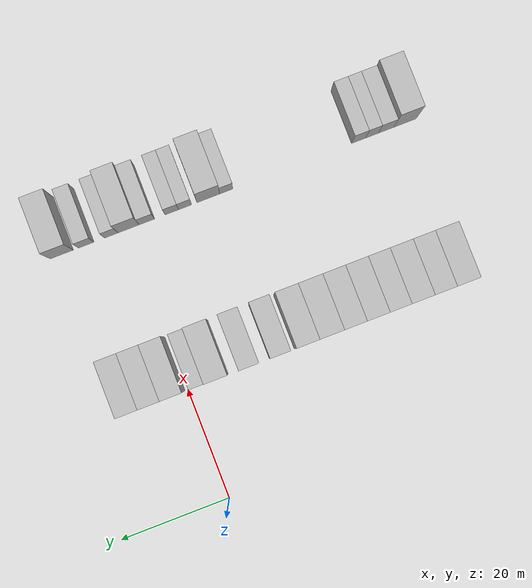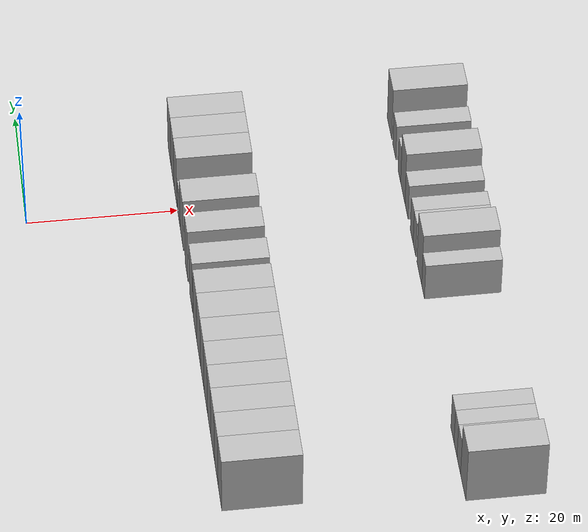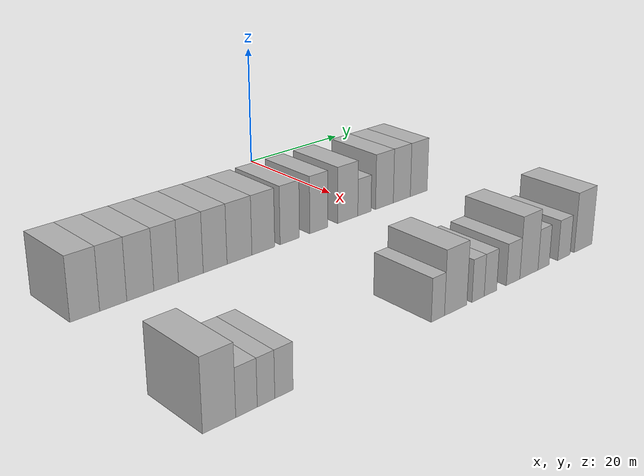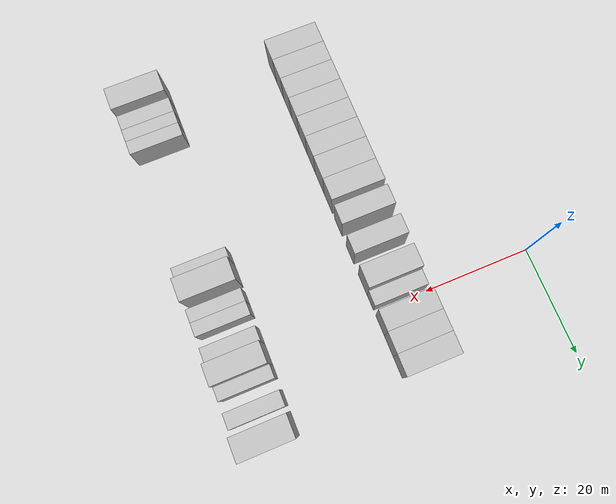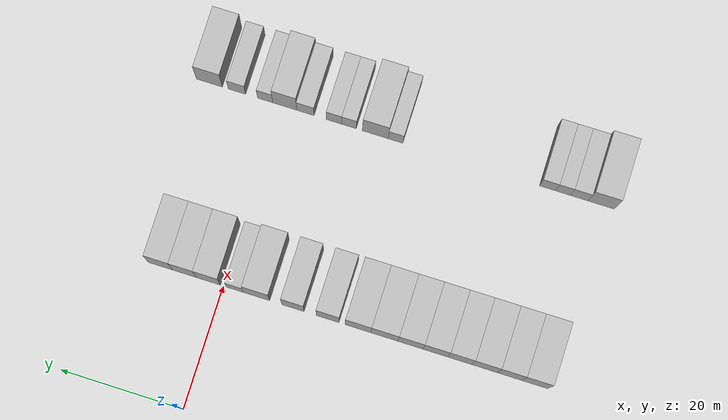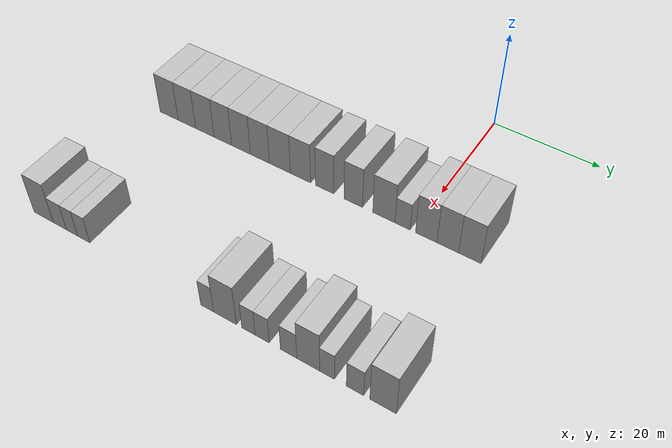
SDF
<sdf version="1.6">
 <world name="default">
  <model name="building_45">
   <static>1</static>
   <pose>25.0000 -50.5195 0 0.000000 0.000000 0.000000</pose>
   <link name="link">
    <pose>0 0 4.50 0 0 0</pose>
    <collision name="collision"><geometry><box><size>10.0000 4.2141 9.0000</size></box></geometry></collision>
    <visual name="visual">
     <cast_shadows>0</cast_shadows>
     <geometry><box><size>10.0000 4.2141 9.0000</size></box></geometry>
     <material>
      <script>
       <uri>model://HANNAS_wall/materials/scripts</uri>
       <uri>model://HANNAS_wall/materials/textures</uri>
       <name>vrc/HANNAS_wall</name>
      </script>
     </material>
    </visual>
   </link>
  </model>
  <model name="building_46">
   <static>1</static>
   <pose>25.0000 -46.4280 0 0.000000 0.000000 0.000000</pose>
   <link name="link">
    <pose>0 0 4.50 0 0 0</pose>
    <collision name="collision"><geometry><box><size>10.0000 3.9689 9.0000</size></box></geometry></collision>
    <visual name="visual">
     <cast_shadows>0</cast_shadows>
     <geometry><box><size>10.0000 3.9689 9.0000</size></box></geometry>
     <material>
      <script>
       <uri>model://HANNAS_wall/materials/scripts</uri>
       <uri>model://HANNAS_wall/materials/textures</uri>
       <name>vrc/HANNAS_wall</name>
      </script>
     </material>
    </visual>
   </link>
  </model>
  <model name="building_47">
   <static>1</static>
   <pose>25.0000 -42.3883 0 0.000000 0.000000 0.000000</pose>
   <link name="link">
    <pose>0 0 4.50 0 0 0</pose>
    <collision name="collision"><geometry><box><size>10.0000 4.1106 9.0000</size></box></geometry></collision>
    <visual name="visual">
     <cast_shadows>0</cast_shadows>
     <geometry><box><size>10.0000 4.1106 9.0000</size></box></geometry>
     <material>
      <script>
       <uri>model://HANNAS_wall/materials/scripts</uri>
       <uri>model://HANNAS_wall/materials/textures</uri>
       <name>vrc/HANNAS_wall</name>
      </script>
     </material>
    </visual>
   </link>
  </model>
  <model name="building_48">
   <static>1</static>
   <pose>25.0000 -38.3885 0 0.000000 0.000000 0.000000</pose>
   <link name="link">
    <pose>0 0 4.50 0 0 0</pose>
    <collision name="collision"><geometry><box><size>10.0000 3.8890 9.0000</size></box></geometry></collision>
    <visual name="visual">
     <cast_shadows>0</cast_shadows>
     <geometry><box><size>10.0000 3.8890 9.0000</size></box></geometry>
     <material>
      <script>
       <uri>model://HANNAS_wall/materials/scripts</uri>
       <uri>model://HANNAS_wall/materials/textures</uri>
       <name>vrc/HANNAS_wall</name>
      </script>
     </material>
    </visual>
   </link>
  </model>
  <model name="building_49">
   <static>1</static>
   <pose>25.0000 -34.4165 0 0.000000 0.000000 0.000000</pose>
   <link name="link">
    <pose>0 0 4.50 0 0 0</pose>
    <collision name="collision"><geometry><box><size>10.0000 4.0550 9.0000</size></box></geometry></collision>
    <visual name="visual">
     <cast_shadows>0</cast_shadows>
     <geometry><box><size>10.0000 4.0550 9.0000</size></box></geometry>
     <material>
      <script>
       <uri>model://HANNAS_wall/materials/scripts</uri>
       <uri>model://HANNAS_wall/materials/textures</uri>
       <name>vrc/HANNAS_wall</name>
      </script>
     </material>
    </visual>
   </link>
  </model>
  <model name="building_50">
   <static>1</static>
   <pose>25.0000 -30.3690 0 0.000000 0.000000 0.000000</pose>
   <link name="link">
    <pose>0 0 4.50 0 0 0</pose>
    <collision name="collision"><geometry><box><size>10.0000 4.0399 9.0000</size></box></geometry></collision>
    <visual name="visual">
     <cast_shadows>0</cast_shadows>
     <geometry><box><size>10.0000 4.0399 9.0000</size></box></geometry>
     <material>
      <script>
       <uri>model://HANNAS_wall/materials/scripts</uri>
       <uri>model://HANNAS_wall/materials/textures</uri>
       <name>vrc/HANNAS_wall</name>
      </script>
     </material>
    </visual>
   </link>
  </model>
  <model name="building_51">
   <static>1</static>
   <pose>25.0000 -26.1624 0 0.000000 0.000000 0.000000</pose>
   <link name="link">
    <pose>0 0 4.50 0 0 0</pose>
    <collision name="collision"><geometry><box><size>10.0000 4.3732 9.0000</size></box></geometry></collision>
    <visual name="visual">
     <cast_shadows>0</cast_shadows>
     <geometry><box><size>10.0000 4.3732 9.0000</size></box></geometry>
     <material>
      <script>
       <uri>model://HANNAS_wall/materials/scripts</uri>
       <uri>model://HANNAS_wall/materials/textures</uri>
       <name>vrc/HANNAS_wall</name>
      </script>
     </material>
    </visual>
   </link>
  </model>
  <model name="building_52">
   <static>1</static>
   <pose>25.0000 -21.8978 0 0.000000 0.000000 0.000000</pose>
   <link name="link">
    <pose>0 0 4.50 0 0 0</pose>
    <collision name="collision"><geometry><box><size>10.0000 4.1560 9.0000</size></box></geometry></collision>
    <visual name="visual">
     <cast_shadows>0</cast_shadows>
     <geometry><box><size>10.0000 4.1560 9.0000</size></box></geometry>
     <material>
      <script>
       <uri>model://HANNAS_wall/materials/scripts</uri>
       <uri>model://HANNAS_wall/materials/textures</uri>
       <name>vrc/HANNAS_wall</name>
      </script>
     </material>
    </visual>
   </link>
  </model>
  <model name="building_53">
   <static>1</static>
   <pose>25.0000 -16.9798 0 0.000000 0.000000 0.000000</pose>
   <link name="link">
    <pose>0 0 4.50 0 0 0</pose>
    <collision name="collision"><geometry><box><size>10.0000 3.6798 9.0000</size></box></geometry></collision>
    <visual name="visual">
     <cast_shadows>0</cast_shadows>
     <geometry><box><size>10.0000 3.6798 9.0000</size></box></geometry>
     <material>
      <script>
       <uri>model://HANNAS_wall/materials/scripts</uri>
       <uri>model://HANNAS_wall/materials/textures</uri>
       <name>vrc/HANNAS_wall</name>
      </script>
     </material>
    </visual>
   </link>
  </model>
  <model name="building_54">
   <static>1</static>
   <pose>25.0000 -11.3338 0 0.000000 0.000000 0.000000</pose>
   <link name="link">
    <pose>0 0 4.50 0 0 0</pose>
    <collision name="collision"><geometry><box><size>10.0000 3.6122 9.0000</size></box></geometry></collision>
    <visual name="visual">
     <cast_shadows>0</cast_shadows>
     <geometry><box><size>10.0000 3.6122 9.0000</size></box></geometry>
     <material>
      <script>
       <uri>model://HANNAS_wall/materials/scripts</uri>
       <uri>model://HANNAS_wall/materials/textures</uri>
       <name>vrc/HANNAS_wall</name>
      </script>
     </material>
    </visual>
   </link>
  </model>
  <model name="building_55">
   <static>1</static>
   <pose>25.0000 -5.4195 0 0.000000 0.000000 0.000000</pose>
   <link name="link">
    <pose>0 0 4.50 0 0 0</pose>
    <collision name="collision"><geometry><box><size>10.0000 4.2166 9.0000</size></box></geometry></collision>
    <visual name="visual">
     <cast_shadows>0</cast_shadows>
     <geometry><box><size>10.0000 4.2166 9.0000</size></box></geometry>
     <material>
      <script>
       <uri>model://HANNAS_wall/materials/scripts</uri>
       <uri>model://HANNAS_wall/materials/textures</uri>
       <name>vrc/HANNAS_wall</name>
      </script>
     </material>
    </visual>
   </link>
  </model>
  <model name="building_56">
   <static>1</static>
   <pose>25.0000 -1.8960 0 0.000000 0.000000 0.000000</pose>
   <link name="link">
    <pose>0 0 3.00 0 0 0</pose>
    <collision name="collision"><geometry><box><size>10.0000 2.8304 6.0000</size></box></geometry></collision>
    <visual name="visual">
     <cast_shadows>0</cast_shadows>
     <geometry><box><size>10.0000 2.8304 6.0000</size></box></geometry>
     <material>
      <script>
       <uri>model://HANNAS_wall/materials/scripts</uri>
       <uri>model://HANNAS_wall/materials/textures</uri>
       <name>vrc/HANNAS_wall</name>
      </script>
     </material>
    </visual>
   </link>
  </model>
  <model name="building_57">
   <static>1</static>
   <pose>25.0000 2.4853 0 0.000000 0.000000 0.000000</pose>
   <link name="link">
    <pose>0 0 4.50 0 0 0</pose>
    <collision name="collision"><geometry><box><size>10.0000 3.9321 9.0000</size></box></geometry></collision>
    <visual name="visual">
     <cast_shadows>0</cast_shadows>
     <geometry><box><size>10.0000 3.9321 9.0000</size></box></geometry>
     <material>
      <script>
       <uri>model://HANNAS_wall/materials/scripts</uri>
       <uri>model://HANNAS_wall/materials/textures</uri>
       <name>vrc/HANNAS_wall</name>
      </script>
     </material>
    </visual>
   </link>
  </model>
  <model name="building_58">
   <static>1</static>
   <pose>25.0000 6.4000 0 0.000000 0.000000 0.000000</pose>
   <link name="link">
    <pose>0 0 4.50 0 0 0</pose>
    <collision name="collision"><geometry><box><size>10.0000 3.8975 9.0000</size></box></geometry></collision>
    <visual name="visual">
     <cast_shadows>0</cast_shadows>
     <geometry><box><size>10.0000 3.8975 9.0000</size></box></geometry>
     <material>
      <script>
       <uri>model://HANNAS_wall/materials/scripts</uri>
       <uri>model://HANNAS_wall/materials/textures</uri>
       <name>vrc/HANNAS_wall</name>
      </script>
     </material>
    </visual>
   </link>
  </model>
  <model name="building_59">
   <static>1</static>
   <pose>25.0000 10.3311 0 0.000000 0.000000 0.000000</pose>
   <link name="link">
    <pose>0 0 4.50 0 0 0</pose>
    <collision name="collision"><geometry><box><size>10.0000 3.9646 9.0000</size></box></geometry></collision>
    <visual name="visual">
     <cast_shadows>0</cast_shadows>
     <geometry><box><size>10.0000 3.9646 9.0000</size></box></geometry>
     <material>
      <script>
       <uri>model://HANNAS_wall/materials/scripts</uri>
       <uri>model://HANNAS_wall/materials/textures</uri>
       <name>vrc/HANNAS_wall</name>
      </script>
     </material>
    </visual>
   </link>
  </model>
  <model name="building_153">
   <static>1</static>
   <pose>55.0000 -52.3983 0 0.000000 0.000000 0.000000</pose>
   <link name="link">
    <pose>0 0 4.50 0 0 0</pose>
    <collision name="collision"><geometry><box><size>10.0000 4.3008 9.0000</size></box></geometry></collision>
    <visual name="visual">
     <cast_shadows>0</cast_shadows>
     <geometry><box><size>10.0000 4.3008 9.0000</size></box></geometry>
     <material>
      <script>
       <uri>model://HANNAS_wall/materials/scripts</uri>
       <uri>model://HANNAS_wall/materials/textures</uri>
       <name>vrc/HANNAS_wall</name>
      </script>
     </material>
    </visual>
   </link>
  </model>
  <model name="building_154">
   <static>1</static>
   <pose>55.0000 -48.8020 0 0.000000 0.000000 0.000000</pose>
   <link name="link">
    <pose>0 0 3.00 0 0 0</pose>
    <collision name="collision"><geometry><box><size>10.0000 2.8919 6.0000</size></box></geometry></collision>
    <visual name="visual">
     <cast_shadows>0</cast_shadows>
     <geometry><box><size>10.0000 2.8919 6.0000</size></box></geometry>
     <material>
      <script>
       <uri>model://HANNAS_wall/materials/scripts</uri>
       <uri>model://HANNAS_wall/materials/textures</uri>
       <name>vrc/HANNAS_wall</name>
      </script>
     </material>
    </visual>
   </link>
  </model>
  <model name="building_155">
   <static>1</static>
   <pose>55.0000 -46.1422 0 0.000000 0.000000 0.000000</pose>
   <link name="link">
    <pose>0 0 3.00 0 0 0</pose>
    <collision name="collision"><geometry><box><size>10.0000 2.4277 6.0000</size></box></geometry></collision>
    <visual name="visual">
     <cast_shadows>0</cast_shadows>
     <geometry><box><size>10.0000 2.4277 6.0000</size></box></geometry>
     <material>
      <script>
       <uri>model://HANNAS_wall/materials/scripts</uri>
       <uri>model://HANNAS_wall/materials/textures</uri>
       <name>vrc/HANNAS_wall</name>
      </script>
     </material>
    </visual>
   </link>
  </model>
  <model name="building_156">
   <static>1</static>
   <pose>55.0000 -43.6232 0 0.000000 0.000000 0.000000</pose>
   <link name="link">
    <pose>0 0 3.00 0 0 0</pose>
    <collision name="collision"><geometry><box><size>10.0000 2.6103 6.0000</size></box></geometry></collision>
    <visual name="visual">
     <cast_shadows>0</cast_shadows>
     <geometry><box><size>10.0000 2.6103 6.0000</size></box></geometry>
     <material>
      <script>
       <uri>model://HANNAS_wall/materials/scripts</uri>
       <uri>model://HANNAS_wall/materials/textures</uri>
       <name>vrc/HANNAS_wall</name>
      </script>
     </material>
    </visual>
   </link>
  </model>
  <model name="building_157">
   <static>1</static>
   <pose>55.0000 -18.6590 0 0.000000 0.000000 0.000000</pose>
   <link name="link">
    <pose>0 0 3.00 0 0 0</pose>
    <collision name="collision"><geometry><box><size>10.0000 2.4393 6.0000</size></box></geometry></collision>
    <visual name="visual">
     <cast_shadows>0</cast_shadows>
     <geometry><box><size>10.0000 2.4393 6.0000</size></box></geometry>
     <material>
      <script>
       <uri>model://HANNAS_wall/materials/scripts</uri>
       <uri>model://HANNAS_wall/materials/textures</uri>
       <name>vrc/HANNAS_wall</name>
      </script>
     </material>
    </visual>
   </link>
  </model>
  <model name="building_158">
   <static>1</static>
   <pose>55.0000 -15.3084 0 0.000000 0.000000 0.000000</pose>
   <link name="link">
    <pose>0 0 4.50 0 0 0</pose>
    <collision name="collision"><geometry><box><size>10.0000 4.2619 9.0000</size></box></geometry></collision>
    <visual name="visual">
     <cast_shadows>0</cast_shadows>
     <geometry><box><size>10.0000 4.2619 9.0000</size></box></geometry>
     <material>
      <script>
       <uri>model://HANNAS_wall/materials/scripts</uri>
       <uri>model://HANNAS_wall/materials/textures</uri>
       <name>vrc/HANNAS_wall</name>
      </script>
     </material>
    </visual>
   </link>
  </model>
  <model name="building_159">
   <static>1</static>
   <pose>55.0000 -10.9598 0 0.000000 0.000000 0.000000</pose>
   <link name="link">
    <pose>0 0 3.00 0 0 0</pose>
    <collision name="collision"><geometry><box><size>10.0000 2.4352 6.0000</size></box></geometry></collision>
    <visual name="visual">
     <cast_shadows>0</cast_shadows>
     <geometry><box><size>10.0000 2.4352 6.0000</size></box></geometry>
     <material>
      <script>
       <uri>model://HANNAS_wall/materials/scripts</uri>
       <uri>model://HANNAS_wall/materials/textures</uri>
       <name>vrc/HANNAS_wall</name>
      </script>
     </material>
    </visual>
   </link>
  </model>
  <model name="building_160">
   <static>1</static>
   <pose>55.0000 -8.4753 0 0.000000 0.000000 0.000000</pose>
   <link name="link">
    <pose>0 0 3.00 0 0 0</pose>
    <collision name="collision"><geometry><box><size>10.0000 2.5338 6.0000</size></box></geometry></collision>
    <visual name="visual">
     <cast_shadows>0</cast_shadows>
     <geometry><box><size>10.0000 2.5338 6.0000</size></box></geometry>
     <material>
      <script>
       <uri>model://HANNAS_wall/materials/scripts</uri>
       <uri>model://HANNAS_wall/materials/textures</uri>
       <name>vrc/HANNAS_wall</name>
      </script>
     </material>
    </visual>
   </link>
  </model>
  <model name="building_161">
   <static>1</static>
   <pose>55.0000 -3.7706 0 0.000000 0.000000 0.000000</pose>
   <link name="link">
    <pose>0 0 3.00 0 0 0</pose>
    <collision name="collision"><geometry><box><size>10.0000 2.8758 6.0000</size></box></geometry></collision>
    <visual name="visual">
     <cast_shadows>0</cast_shadows>
     <geometry><box><size>10.0000 2.8758 6.0000</size></box></geometry>
     <material>
      <script>
       <uri>model://HANNAS_wall/materials/scripts</uri>
       <uri>model://HANNAS_wall/materials/textures</uri>
       <name>vrc/HANNAS_wall</name>
      </script>
     </material>
    </visual>
   </link>
  </model>
  <model name="building_162">
   <static>1</static>
   <pose>55.0000 -0.3504 0 0.000000 0.000000 0.000000</pose>
   <link name="link">
    <pose>0 0 4.50 0 0 0</pose>
    <collision name="collision"><geometry><box><size>10.0000 3.9647 9.0000</size></box></geometry></collision>
    <visual name="visual">
     <cast_shadows>0</cast_shadows>
     <geometry><box><size>10.0000 3.9647 9.0000</size></box></geometry>
     <material>
      <script>
       <uri>model://HANNAS_wall/materials/scripts</uri>
       <uri>model://HANNAS_wall/materials/textures</uri>
       <name>vrc/HANNAS_wall</name>
      </script>
     </material>
    </visual>
   </link>
  </model>
  <model name="building_163">
   <static>1</static>
   <pose>55.0000 2.8888 0 0.000000 0.000000 0.000000</pose>
   <link name="link">
    <pose>0 0 3.00 0 0 0</pose>
    <collision name="collision"><geometry><box><size>10.0000 2.5137 6.0000</size></box></geometry></collision>
    <visual name="visual">
     <cast_shadows>0</cast_shadows>
     <geometry><box><size>10.0000 2.5137 6.0000</size></box></geometry>
     <material>
      <script>
       <uri>model://HANNAS_wall/materials/scripts</uri>
       <uri>model://HANNAS_wall/materials/textures</uri>
       <name>vrc/HANNAS_wall</name>
      </script>
     </material>
    </visual>
   </link>
  </model>
  <model name="building_164">
   <static>1</static>
   <pose>55.0000 7.5794 0 0.000000 0.000000 0.000000</pose>
   <link name="link">
    <pose>0 0 3.00 0 0 0</pose>
    <collision name="collision"><geometry><box><size>10.0000 2.8675 6.0000</size></box></geometry></collision>
    <visual name="visual">
     <cast_shadows>0</cast_shadows>
     <geometry><box><size>10.0000 2.8675 6.0000</size></box></geometry>
     <material>
      <script>
       <uri>model://HANNAS_wall/materials/scripts</uri>
       <uri>model://HANNAS_wall/materials/textures</uri>
       <name>vrc/HANNAS_wall</name>
      </script>
     </material>
    </visual>
   </link>
  </model>
  <model name="building_165">
   <static>1</static>
   <pose>55.0000 12.1600 0 0.000000 0.000000 0.000000</pose>
   <link name="link">
    <pose>0 0 4.50 0 0 0</pose>
    <collision name="collision"><geometry><box><size>10.0000 4.2938 9.0000</size></box></geometry></collision>
    <visual name="visual">
     <cast_shadows>0</cast_shadows>
     <geometry><box><size>10.0000 4.2938 9.0000</size></box></geometry>
     <material>
      <script>
       <uri>model://HANNAS_wall/materials/scripts</uri>
       <uri>model://HANNAS_wall/materials/textures</uri>
       <name>vrc/HANNAS_wall</name>
      </script>
     </material>
    </visual>
   </link>
  </model>
 </world>
</sdf>
